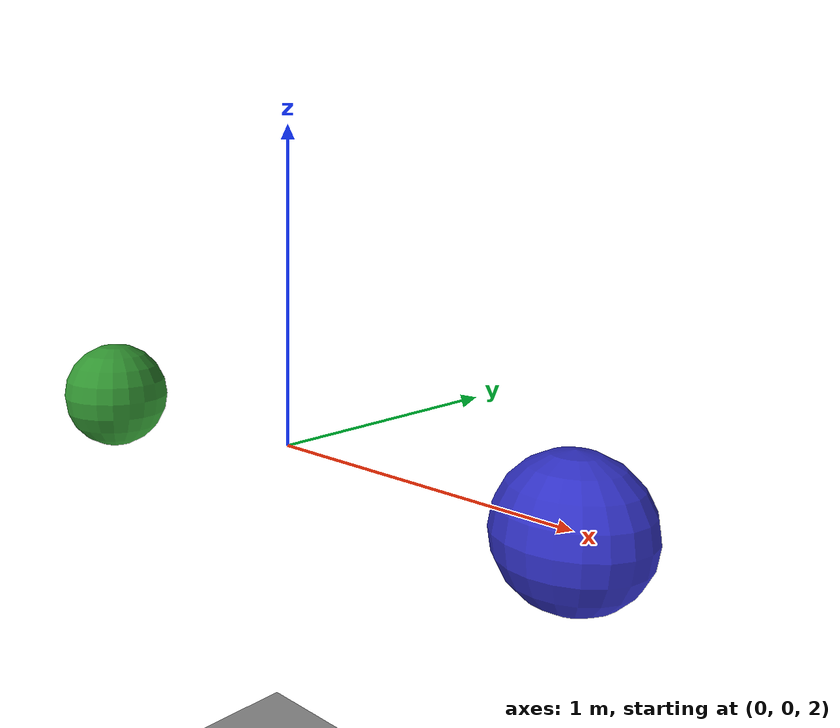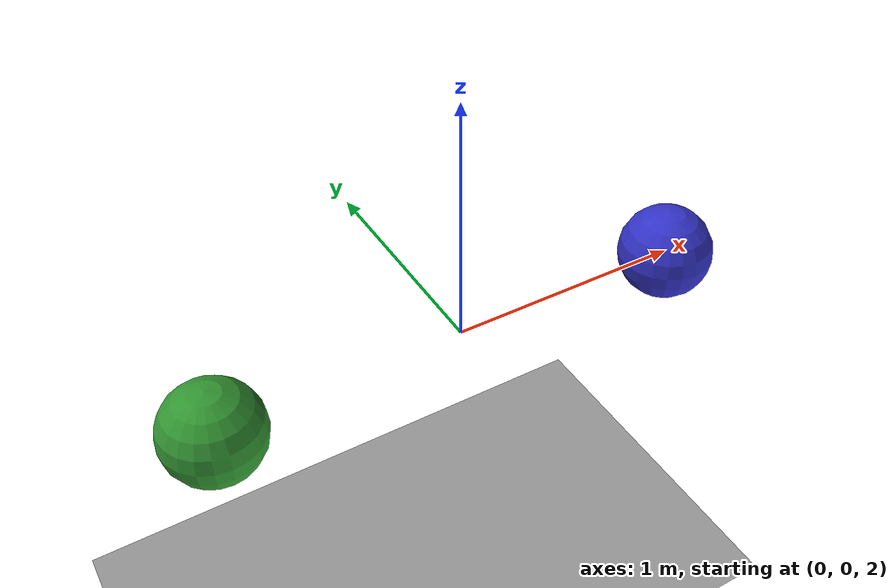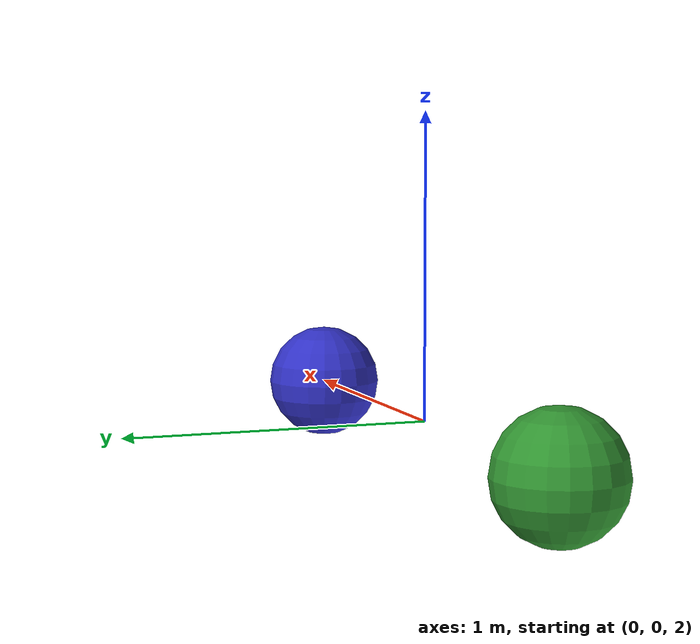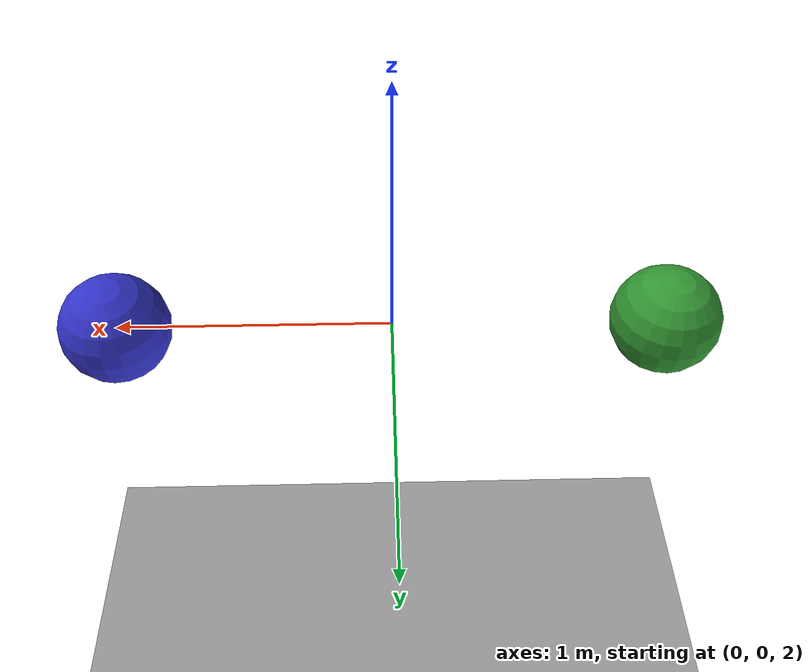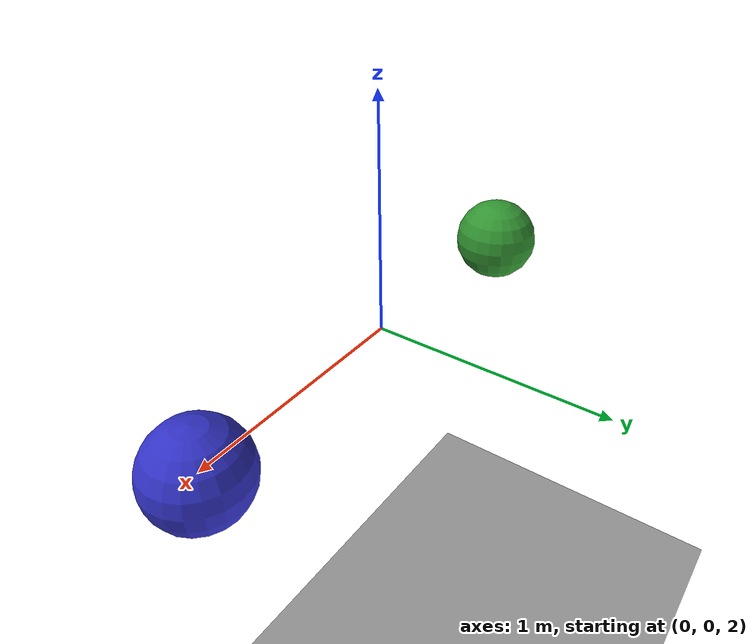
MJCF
<mujoco>
  <option gravity="0 0 -9.81" />
  <worldbody>
    <body name="object_3" pos="0 0 0">
      <geom type="plane" size="20 20 0.1" rgba="0.6 0.6 0.6 1" />
    </body>
    <body name="object_1" pos="-1 0 2">
      <geom type="sphere" size="0.2" mass="1" rgba="0.2 0.6 0.2 1" friction="0.3" solref="0.01 1" />
      <joint type="free" name="object_1_joint" />
    </body>
    <body name="object_2" pos="1 0 2">
      <geom type="sphere" size="0.2" mass="1" rgba="0.2 0.2 0.8 1" friction="0.3" solref="0.001 1" />
      <joint type="free" name="object_2_joint" />
    </body>
    <body name="object_4" pos="0 0 2" />
  </worldbody>
</mujoco>
